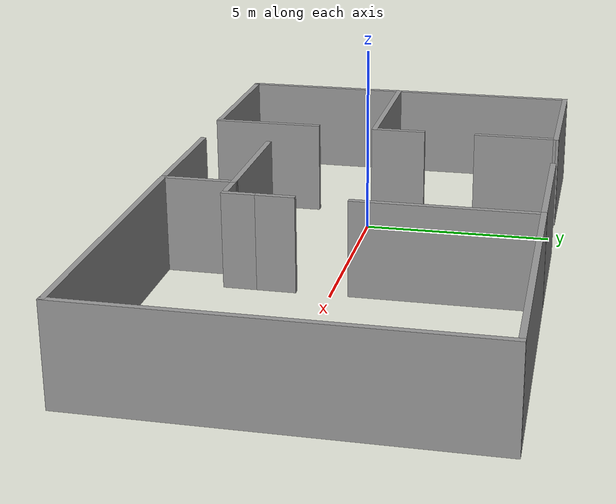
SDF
<?xml version='1.0'?>
<sdf version='1.7'>
  <model name='office.world'>
    <pose>3.24057 0.330667 0 0 -0 0</pose>
    <link name='Wall_0'>
      <collision name='Wall_0_Collision'>
        <geometry>
          <box>
            <size>3.5 0.15 2.5</size>
          </box>
        </geometry>
        <pose>0 0 1.25 0 -0 0</pose>
      </collision>
      <visual name='Wall_0_Visual'>
        <pose>0 0 1.25 0 -0 0</pose>
        <geometry>
          <box>
            <size>3.5 0.15 2.5</size>
          </box>
        </geometry>
        <material>
          <script>
            <uri>file://media/materials/scripts/gazebo.material</uri>
            <name>Gazebo/Grey</name>
          </script>
          <ambient>1 1 1 1</ambient>
        </material>
        <meta>
          <layer>0</layer>
        </meta>
      </visual>
      <pose>-0.925566 -2.97067 0 0 -0 0</pose>
    </link>
    <link name='Wall_1'>
      <collision name='Wall_1_Collision'>
        <geometry>
          <box>
            <size>2 0.15 2.5</size>
          </box>
        </geometry>
        <pose>0 0 1.25 0 -0 0</pose>
      </collision>
      <visual name='Wall_1_Visual'>
        <pose>0 0 1.25 0 -0 0</pose>
        <geometry>
          <box>
            <size>2 0.15 2.5</size>
          </box>
        </geometry>
        <material>
          <script>
            <uri>file://media/materials/scripts/gazebo.material</uri>
            <name>Gazebo/Grey</name>
          </script>
          <ambient>1 1 1 1</ambient>
        </material>
        <meta>
          <layer>0</layer>
        </meta>
      </visual>
      <pose>0.749434 -3.89567 0 0 -0 -1.5708</pose>
    </link>
    <link name='Wall_10'>
      <collision name='Wall_10_Collision'>
        <geometry>
          <box>
            <size>1 0.15 2.5</size>
          </box>
        </geometry>
        <pose>0 0 1.25 0 -0 0</pose>
      </collision>
      <visual name='Wall_10_Visual'>
        <pose>0 0 1.25 0 -0 0</pose>
        <geometry>
          <box>
            <size>1 0.15 2.5</size>
          </box>
        </geometry>
        <material>
          <script>
            <uri>file://media/materials/scripts/gazebo.material</uri>
            <name>Gazebo/Grey</name>
          </script>
          <ambient>1 1 1 1</ambient>
        </material>
        <meta>
          <layer>0</layer>
        </meta>
      </visual>
      <pose>1.57611 -1.69966 0 0 -0 1.5708</pose>
    </link>
    <link name='Wall_14'>
      <collision name='Wall_14_Collision'>
        <geometry>
          <box>
            <size>0.971036 0.15 2.5</size>
          </box>
        </geometry>
        <pose>0 0 1.25 0 -0 0</pose>
      </collision>
      <visual name='Wall_14_Visual'>
        <pose>0 0 1.25 0 -0 0</pose>
        <geometry>
          <box>
            <size>0.971036 0.15 2.5</size>
          </box>
        </geometry>
        <material>
          <script>
            <uri>file://media/materials/scripts/gazebo.material</uri>
            <name>Gazebo/Grey</name>
          </script>
          <ambient>1 1 1 1</ambient>
        </material>
        <meta>
          <layer>0</layer>
        </meta>
      </visual>
      <pose>1.15986 -2.9765 0 0 -0 -0.014204</pose>
    </link>
    <link name='Wall_15'>
      <collision name='Wall_15_Collision'>
        <geometry>
          <box>
            <size>1.01533 0.15 2.5</size>
          </box>
        </geometry>
        <pose>0 0 1.25 0 -0 0</pose>
      </collision>
      <visual name='Wall_15_Visual'>
        <pose>0 0 1.25 0 -0 0</pose>
        <geometry>
          <box>
            <size>1.01533 0.15 2.5</size>
          </box>
        </geometry>
        <material>
          <script>
            <uri>file://media/materials/scripts/gazebo.material</uri>
            <name>Gazebo/Grey</name>
          </script>
          <ambient>1 1 1 1</ambient>
        </material>
        <meta>
          <layer>0</layer>
        </meta>
      </visual>
      <pose>1.57611 -2.54966 0 0 -0 1.5708</pose>
    </link>
    <link name='Wall_17'>
      <collision name='Wall_17_Collision'>
        <geometry>
          <box>
            <size>7.85442 0.15 2.5</size>
          </box>
        </geometry>
        <pose>0 0 1.25 0 -0 0</pose>
      </collision>
      <visual name='Wall_17_Visual'>
        <pose>0 0 1.25 0 -0 0</pose>
        <geometry>
          <box>
            <size>7.85442 0.15 2.5</size>
          </box>
        </geometry>
        <material>
          <script>
            <uri>file://media/materials/scripts/gazebo.material</uri>
            <name>Gazebo/Grey</name>
          </script>
          <ambient>1 1 1 1</ambient>
        </material>
        <meta>
          <layer>0</layer>
        </meta>
      </visual>
      <pose>4.60148 -4.78549 0 0 -0 0.009132</pose>
    </link>
    <link name='Wall_18'>
      <collision name='Wall_18_Collision'>
        <geometry>
          <box>
            <size>9.77018 0.15 2.5</size>
          </box>
        </geometry>
        <pose>0 0 1.25 0 -0 0</pose>
      </collision>
      <visual name='Wall_18_Visual'>
        <pose>0 0 1.25 0 -0 0</pose>
        <geometry>
          <box>
            <size>9.77018 0.15 2.5</size>
          </box>
        </geometry>
        <material>
          <script>
            <uri>file://media/materials/scripts/gazebo.material</uri>
            <name>Gazebo/Grey</name>
          </script>
          <ambient>1 1 1 1</ambient>
        </material>
        <meta>
          <layer>0</layer>
        </meta>
      </visual>
      <pose>8.50455 0.059755 0 0 -0 1.5675</pose>
    </link>
    <link name='Wall_19'>
      <collision name='Wall_19_Collision'>
        <geometry>
          <box>
            <size>7.08933 0.15 2.5</size>
          </box>
        </geometry>
        <pose>0 0 1.25 0 -0 0</pose>
      </collision>
      <visual name='Wall_19_Visual'>
        <pose>0 0 1.25 0 -0 0</pose>
        <geometry>
          <box>
            <size>7.08933 0.15 2.5</size>
          </box>
        </geometry>
        <material>
          <script>
            <uri>file://media/materials/scripts/gazebo.material</uri>
            <name>Gazebo/Grey</name>
          </script>
          <ambient>1 1 1 1</ambient>
        </material>
        <meta>
          <layer>0</layer>
        </meta>
      </visual>
      <pose>5.01582 4.82667 0 0 -0 -3.12916</pose>
    </link>
    <link name='Wall_2'>
      <collision name='Wall_2_Collision'>
        <geometry>
          <box>
            <size>3.5 0.15 2.5</size>
          </box>
        </geometry>
        <pose>0 0 1.25 0 -0 0</pose>
      </collision>
      <visual name='Wall_2_Visual'>
        <pose>0 0 1.25 0 -0 0</pose>
        <geometry>
          <box>
            <size>3.5 0.15 2.5</size>
          </box>
        </geometry>
        <material>
          <script>
            <uri>file://media/materials/scripts/gazebo.material</uri>
            <name>Gazebo/Grey</name>
          </script>
          <ambient>1 1 1 1</ambient>
        </material>
        <meta>
          <layer>0</layer>
        </meta>
      </visual>
      <pose>-0.925566 -4.82067 0 0 -0 3.14159</pose>
    </link>
    <link name='Wall_21'>
      <collision name='Wall_21_Collision'>
        <geometry>
          <box>
            <size>2.31479 0.15 2.5</size>
          </box>
        </geometry>
        <pose>0 0 1.25 0 -0 0</pose>
      </collision>
      <visual name='Wall_21_Visual'>
        <pose>0 0 1.25 0 -0 0</pose>
        <geometry>
          <box>
            <size>2.31479 0.15 2.5</size>
          </box>
        </geometry>
        <material>
          <script>
            <uri>file://media/materials/scripts/gazebo.material</uri>
            <name>Gazebo/Grey</name>
          </script>
          <ambient>1 1 1 1</ambient>
        </material>
        <meta>
          <layer>0</layer>
        </meta>
      </visual>
      <pose>-4.4275 3.60796 0 0 -0 1.56439</pose>
    </link>
    <link name='Wall_23'>
      <collision name='Wall_23_Collision'>
        <geometry>
          <box>
            <size>9.71101 0.15 2.5</size>
          </box>
        </geometry>
        <pose>0 0 1.25 0 -0 0</pose>
      </collision>
      <visual name='Wall_23_Visual'>
        <pose>0 0 1.25 0 -0 0</pose>
        <geometry>
          <box>
            <size>9.71101 0.15 2.5</size>
          </box>
        </geometry>
        <material>
          <script>
            <uri>file://media/materials/scripts/gazebo.material</uri>
            <name>Gazebo/Grey</name>
          </script>
          <ambient>1 1 1 1</ambient>
        </material>
        <meta>
          <layer>0</layer>
        </meta>
      </visual>
      <pose>-8.51557 -0.090167 0 0 -0 1.57184</pose>
    </link>
    <link name='Wall_24'>
      <collision name='Wall_24_Collision'>
        <geometry>
          <box>
            <size>4.25 0.15 2.5</size>
          </box>
        </geometry>
        <pose>0 0 1.25 0 -0 0</pose>
      </collision>
      <visual name='Wall_24_Visual'>
        <pose>0 0 1.25 0 -0 0</pose>
        <geometry>
          <box>
            <size>4.25 0.15 2.5</size>
          </box>
        </geometry>
        <material>
          <script>
            <uri>file://media/materials/scripts/gazebo.material</uri>
            <name>Gazebo/Grey</name>
          </script>
          <ambient>1 1 1 1</ambient>
        </material>
        <meta>
          <layer>0</layer>
        </meta>
      </visual>
      <pose>-6.47057 4.69033 0 0 -0 0</pose>
    </link>
    <link name='Wall_26'>
      <collision name='Wall_26_Collision'>
        <geometry>
          <box>
            <size>4.25 0.15 2.5</size>
          </box>
        </geometry>
        <pose>0 0 1.25 0 -0 0</pose>
      </collision>
      <visual name='Wall_26_Visual'>
        <pose>0 0 1.25 0 -0 0</pose>
        <geometry>
          <box>
            <size>4.25 0.15 2.5</size>
          </box>
        </geometry>
        <material>
          <script>
            <uri>file://media/materials/scripts/gazebo.material</uri>
            <name>Gazebo/Grey</name>
          </script>
          <ambient>1 1 1 1</ambient>
        </material>
        <meta>
          <layer>0</layer>
        </meta>
      </visual>
      <pose>-6.46757 -0.363667 0 0 -0 3.14159</pose>
    </link>
    <link name='Wall_30'>
      <collision name='Wall_30_Collision'>
        <geometry>
          <box>
            <size>4.75 0.15 2.5</size>
          </box>
        </geometry>
        <pose>0 0 1.25 0 -0 0</pose>
      </collision>
      <visual name='Wall_30_Visual'>
        <pose>0 0 1.25 0 -0 0</pose>
        <geometry>
          <box>
            <size>4.75 0.15 2.5</size>
          </box>
        </geometry>
        <material>
          <script>
            <uri>file://media/materials/scripts/gazebo.material</uri>
            <name>Gazebo/Grey</name>
          </script>
          <ambient>1 1 1 1</ambient>
        </material>
        <meta>
          <layer>0</layer>
        </meta>
      </visual>
      <pose>1.54642 2.48353 0 0 -0 -1.5708</pose>
    </link>
    <link name='Wall_33'>
      <collision name='Wall_33_Collision'>
        <geometry>
          <box>
            <size>3.89461 0.15 2.5</size>
          </box>
        </geometry>
        <pose>0 0 1.25 0 -0 0</pose>
      </collision>
      <visual name='Wall_33_Visual'>
        <pose>0 0 1.25 0 -0 0</pose>
        <geometry>
          <box>
            <size>3.89461 0.15 2.5</size>
          </box>
        </geometry>
        <material>
          <script>
            <uri>file://media/materials/scripts/gazebo.material</uri>
            <name>Gazebo/Grey</name>
          </script>
          <ambient>1 1 1 1</ambient>
        </material>
        <meta>
          <layer>0</layer>
        </meta>
      </visual>
      <pose>-0.325816 4.76809 0 0 -0 0.008246</pose>
    </link>
    <link name='Wall_4'>
      <collision name='Wall_4_Collision'>
        <geometry>
          <box>
            <size>4.25 0.15 2.5</size>
          </box>
        </geometry>
        <pose>0 0 1.25 0 -0 0</pose>
      </collision>
      <visual name='Wall_4_Visual'>
        <pose>0 0 1.25 0 -0 0</pose>
        <geometry>
          <box>
            <size>4.25 0.15 2.5</size>
          </box>
        </geometry>
        <material>
          <script>
            <uri>file://media/materials/scripts/gazebo.material</uri>
            <name>Gazebo/Grey</name>
          </script>
          <ambient>1 1 1 1</ambient>
        </material>
        <meta>
          <layer>0</layer>
        </meta>
      </visual>
      <pose>-6.46057 -4.87067 0 0 -0 3.14159</pose>
    </link>
    <link name='Wall_6'>
      <collision name='Wall_6_Collision'>
        <geometry>
          <box>
            <size>3 0.15 2.5</size>
          </box>
        </geometry>
        <pose>0 0 1.25 0 -0 0</pose>
      </collision>
      <visual name='Wall_6_Visual'>
        <pose>0 0 1.25 0 -0 0</pose>
        <geometry>
          <box>
            <size>3 0.15 2.5</size>
          </box>
        </geometry>
        <material>
          <script>
            <uri>file://media/materials/scripts/gazebo.material</uri>
            <name>Gazebo/Grey</name>
          </script>
          <ambient>1 1 1 1</ambient>
        </material>
        <meta>
          <layer>0</layer>
        </meta>
      </visual>
      <pose>-4.41057 -3.44567 0 0 -0 1.5708</pose>
    </link>
    <link name='Wall_8'>
      <collision name='Wall_8_Collision'>
        <geometry>
          <box>
            <size>1.5 0.15 2.5</size>
          </box>
        </geometry>
        <pose>0 0 1.25 0 -0 0</pose>
      </collision>
      <visual name='Wall_8_Visual'>
        <pose>0 0 1.25 0 -0 0</pose>
        <geometry>
          <box>
            <size>1.5 0.15 2.5</size>
          </box>
        </geometry>
        <material>
          <script>
            <uri>file://media/materials/scripts/gazebo.material</uri>
            <name>Gazebo/Grey</name>
          </script>
          <ambient>1 1 1 1</ambient>
        </material>
        <meta>
          <layer>0</layer>
        </meta>
      </visual>
      <pose>-4.41757 0.311333 0 0 -0 1.5708</pose>
    </link>
    <static>1</static>
  </model>
</sdf>
